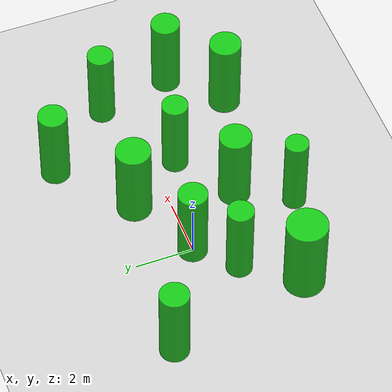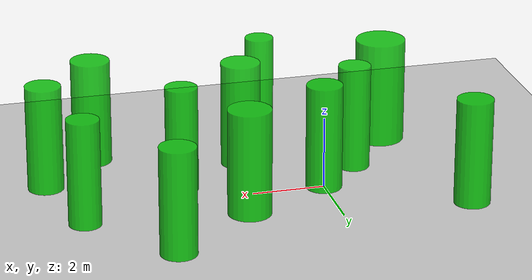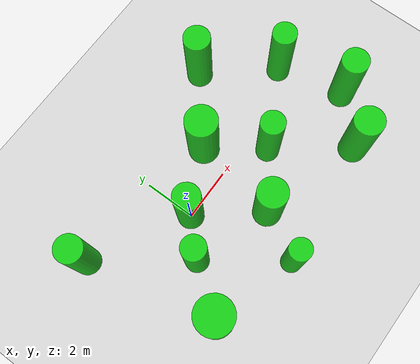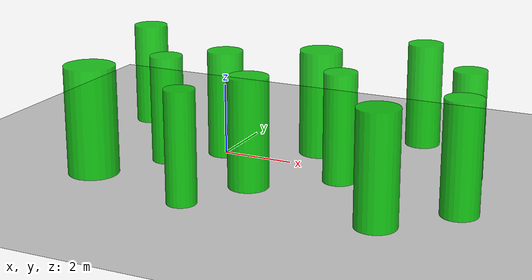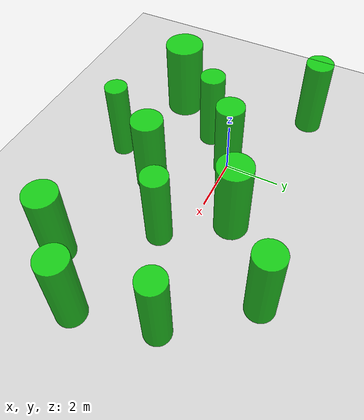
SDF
<?xml version="1.0"?>
<sdf version="1.6">
  <world name="more_obstacles">
    <include>
      <uri>model://sun</uri>
    </include>

    <include>
      <uri>model://ground_plane</uri>
    </include>

    <physics name="default_physics" default="0" type="ode">
      <gravity>0 0 -9.8066</gravity>
      <ode>
        <solver>
          <type>quick</type>
          <iters>10</iters>
          <sor>1.3</sor>
        </solver>
        <constraints>
          <cfm>0</cfm>
          <erp>0.2</erp>
          <contact_max_correcting_vel>100</contact_max_correcting_vel>
          <contact_surface_layer>0.001</contact_surface_layer>
        </constraints>
      </ode>
      <max_step_size>0.004</max_step_size>
      <real_time_factor>1</real_time_factor>
      <real_time_update_rate>250</real_time_update_rate>
    </physics>

    <model name="obstacle_0">
      <static>true</static>
      <pose>-2.5 -3.0 1.5 0 0 0</pose>
      <link name="link">
        <collision name="collision">
          <geometry><cylinder><radius>0.7</radius><length>3.0</length></cylinder></geometry>
        </collision>
        <visual name="visual">
          <geometry><cylinder><radius>0.7</radius><length>3.0</length></cylinder></geometry>
          <material><ambient>0 0.8 0 0.85</ambient><diffuse>0 0.8 0 0.85</diffuse></material>
        </visual>
      </link>
    </model>

    <model name="obstacle_1">
      <static>true</static>
      <pose>0.0 0.0 1.5 0 0 0</pose>
      <link name="link">
        <collision name="collision">
          <geometry><cylinder><radius>0.5</radius><length>3.0</length></cylinder></geometry>
        </collision>
        <visual name="visual">
          <geometry><cylinder><radius>0.5</radius><length>3.0</length></cylinder></geometry>
          <material><ambient>0 0.8 0 0.85</ambient><diffuse>0 0.8 0 0.85</diffuse></material>
        </visual>
      </link>
    </model>

    <model name="obstacle_2">
      <static>true</static>
      <pose>1.8 -2.2 1.5 0 0 0</pose>
      <link name="link">
        <collision name="collision">
          <geometry><cylinder><radius>0.55</radius><length>3.0</length></cylinder></geometry>
        </collision>
        <visual name="visual">
          <geometry><cylinder><radius>0.55</radius><length>3.0</length></cylinder></geometry>
          <material><ambient>0 0.8 0 0.85</ambient><diffuse>0 0.8 0 0.85</diffuse></material>
        </visual>
      </link>
    </model>

    <model name="obstacle_3">
      <static>true</static>
      <pose>-1.2 -1.2 1.5 0 0 0</pose>
      <link name="link">
        <collision name="collision">
          <geometry><cylinder><radius>0.45</radius><length>3.0</length></cylinder></geometry>
        </collision>
        <visual name="visual">
          <geometry><cylinder><radius>0.45</radius><length>3.0</length></cylinder></geometry>
          <material><ambient>0 0.8 0 0.85</ambient><diffuse>0 0.8 0 0.85</diffuse></material>
        </visual>
      </link>
    </model>

    <model name="obstacle_4">
      <static>true</static>
      <pose>2.4 1.2 1.5 0 0 0</pose>
      <link name="link">
        <collision name="collision">
          <geometry><cylinder><radius>0.6</radius><length>3.0</length></cylinder></geometry>
        </collision>
        <visual name="visual">
          <geometry><cylinder><radius>0.6</radius><length>3.0</length></cylinder></geometry>
          <material><ambient>0 0.8 0 0.85</ambient><diffuse>0 0.8 0 0.85</diffuse></material>
        </visual>
      </link>
    </model>

    <model name="obstacle_5">
      <static>true</static>
      <pose>-3.6 2.0 1.5 0 0 0</pose>
      <link name="link">
        <collision name="collision">
          <geometry><cylinder><radius>0.5</radius><length>3.0</length></cylinder></geometry>
        </collision>
        <visual name="visual">
          <geometry><cylinder><radius>0.5</radius><length>3.0</length></cylinder></geometry>
          <material><ambient>0 0.8 0 0.85</ambient><diffuse>0 0.8 0 0.85</diffuse></material>
        </visual>
      </link>
    </model>

    <model name="obstacle_6">
      <static>true</static>
      <pose>0.8 -4.0 1.5 0 0 0</pose>
      <link name="link">
        <collision name="collision">
          <geometry><cylinder><radius>0.4</radius><length>3.0</length></cylinder></geometry>
        </collision>
        <visual name="visual">
          <geometry><cylinder><radius>0.4</radius><length>3.0</length></cylinder></geometry>
          <material><ambient>0 0.8 0 0.85</ambient><diffuse>0 0.8 0 0.85</diffuse></material>
        </visual>
      </link>
    </model>

    <model name="obstacle_7">
      <static>true</static>
      <pose>3.8 -0.8 1.5 0 0 0</pose>
      <link name="link">
        <collision name="collision">
          <geometry><cylinder><radius>0.45</radius><length>3.0</length></cylinder></geometry>
        </collision>
        <visual name="visual">
          <geometry><cylinder><radius>0.45</radius><length>3.0</length></cylinder></geometry>
          <material><ambient>0 0.8 0 0.85</ambient><diffuse>0 0.8 0 0.85</diffuse></material>
        </visual>
      </link>
    </model>

    <model name="obstacle_8">
      <static>true</static>
      <pose>4.8 3.2 1.5 0 0 0</pose>
      <link name="link">
        <collision name="collision">
          <geometry><cylinder><radius>0.5</radius><length>3.0</length></cylinder></geometry>
        </collision>
        <visual name="visual">
          <geometry><cylinder><radius>0.5</radius><length>3.0</length></cylinder></geometry>
          <material><ambient>0 0.8 0 0.85</ambient><diffuse>0 0.8 0 0.85</diffuse></material>
        </visual>
      </link>
    </model>

    <model name="obstacle_9">
      <static>true</static>
      <pose>5.8 -3.4 1.5 0 0 0</pose>
      <link name="link">
        <collision name="collision">
          <geometry><cylinder><radius>0.55</radius><length>3.0</length></cylinder></geometry>
        </collision>
        <visual name="visual">
          <geometry><cylinder><radius>0.55</radius><length>3.0</length></cylinder></geometry>
          <material><ambient>0 0.8 0 0.85</ambient><diffuse>0 0.8 0 0.85</diffuse></material>
        </visual>
      </link>
    </model>

    <model name="obstacle_10">
      <static>true</static>
      <pose>6.8 0.8 1.5 0 0 0</pose>
      <link name="link">
        <collision name="collision">
          <geometry><cylinder><radius>0.45</radius><length>3.0</length></cylinder></geometry>
        </collision>
        <visual name="visual">
          <geometry><cylinder><radius>0.45</radius><length>3.0</length></cylinder></geometry>
          <material><ambient>0 0.8 0 0.85</ambient><diffuse>0 0.8 0 0.85</diffuse></material>
        </visual>
      </link>
    </model>

    <model name="obstacle_11">
      <static>true</static>
      <pose>7.4 -1.8 1.5 0 0 0</pose>
      <link name="link">
        <collision name="collision">
          <geometry><cylinder><radius>0.5</radius><length>3.0</length></cylinder></geometry>
        </collision>
        <visual name="visual">
          <geometry><cylinder><radius>0.5</radius><length>3.0</length></cylinder></geometry>
          <material><ambient>0 0.8 0 0.85</ambient><diffuse>0 0.8 0 0.85</diffuse></material>
        </visual>
      </link>
    </model>
  </world>
</sdf>
